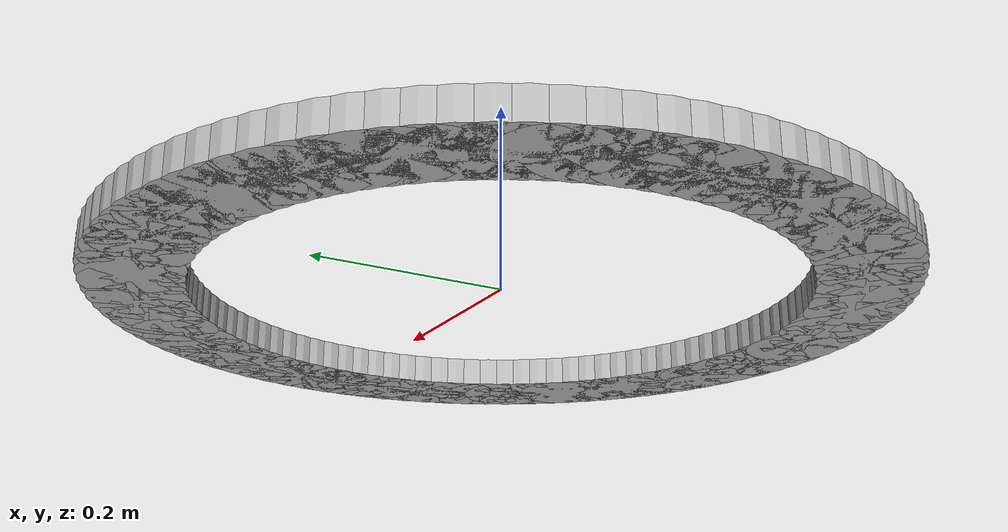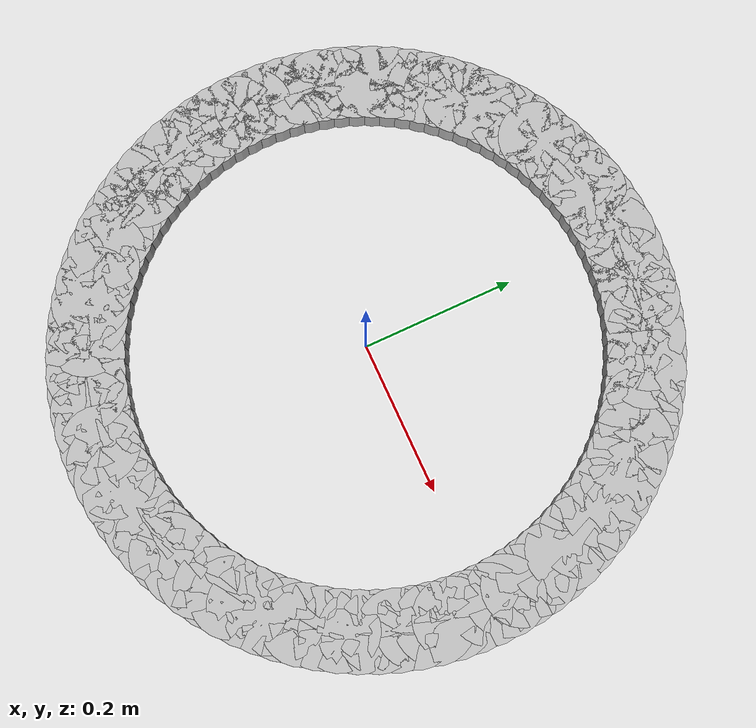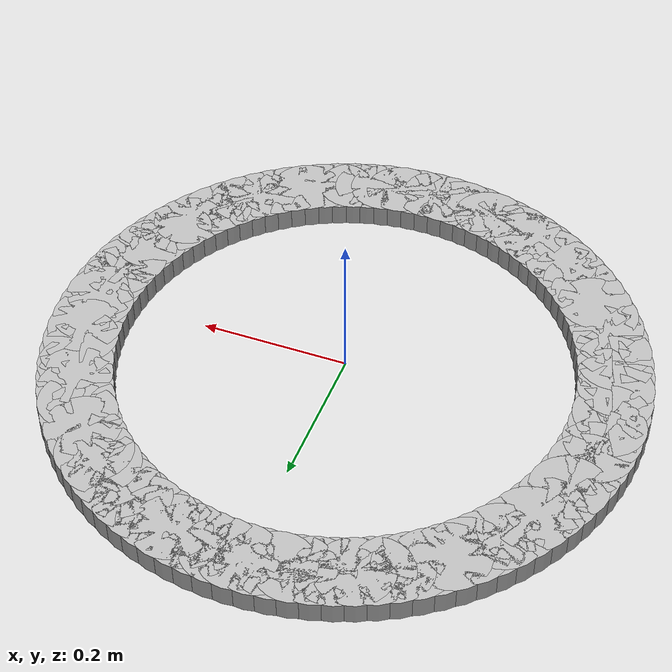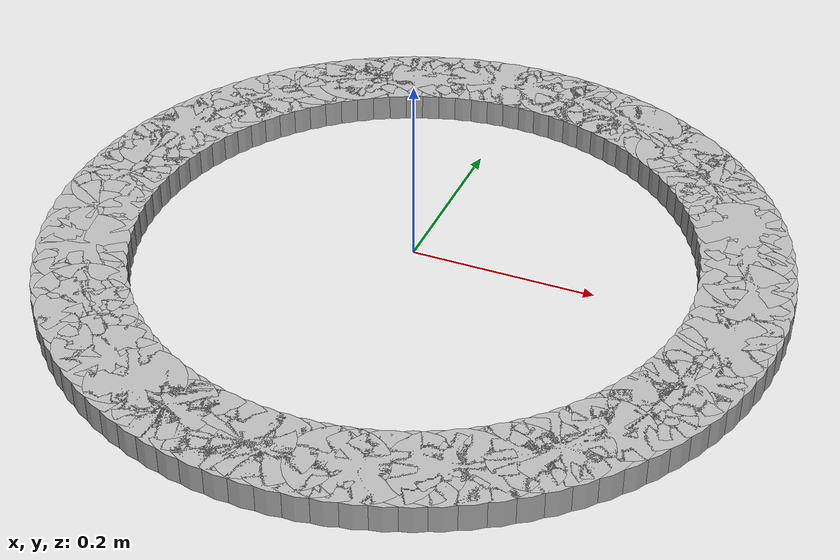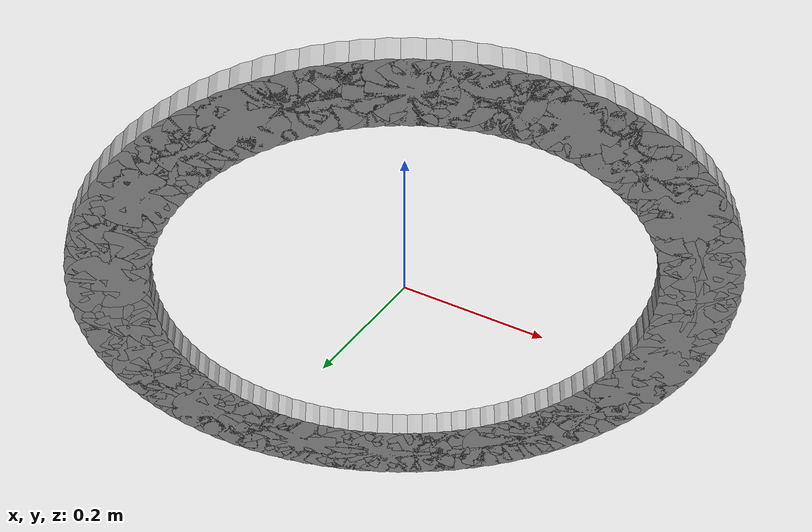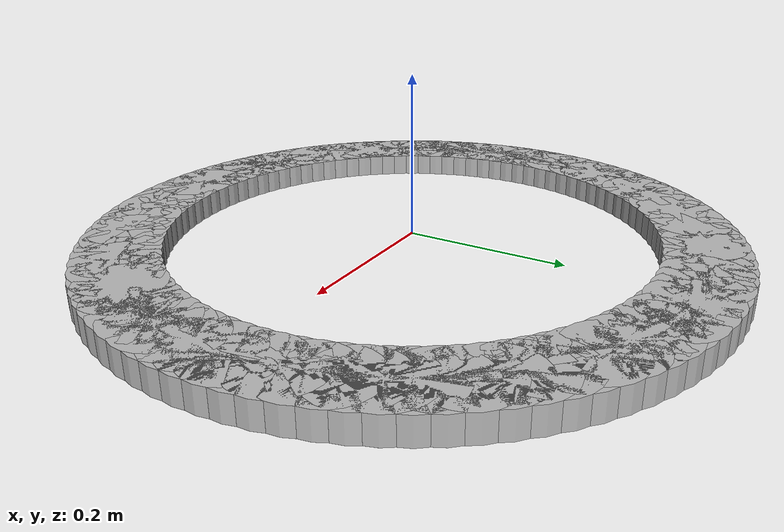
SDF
<?xml version='1.0'?>
<sdf version='1.6'>
    <model name='approximate_ring'>
        <static>false</static>

        <link name='segment_0'>
            <pose>0.35 0.0 0 0 0 0.0</pose>
            <collision name='collision'>
                <geometry>
                    <cylinder>
                        <radius>0.05000000000000002</radius>
                        <length>0.03</length>
                    </cylinder>
                </geometry>
            </collision>
            <visual name='visual'>
                <geometry>
                    <cylinder>
                        <radius>0.05000000000000002</radius>
                        <length>0.03</length>
                    </cylinder>
                </geometry>
            </visual>
        </link>

        <link name='segment_1'>
            <pose>0.3492506231335112 0.02289109523055007 0 0 0 0.06544984694978735</pose>
            <collision name='collision'>
                <geometry>
                    <cylinder>
                        <radius>0.05000000000000002</radius>
                        <length>0.03</length>
                    </cylinder>
                </geometry>
            </collision>
            <visual name='visual'>
                <geometry>
                    <cylinder>
                        <radius>0.05000000000000002</radius>
                        <length>0.03</length>
                    </cylinder>
                </geometry>
            </visual>
        </link>

        <link name='segment_2'>
            <pose>0.3470057014808336 0.045684167277018045 0 0 0 0.1308996938995747</pose>
            <collision name='collision'>
                <geometry>
                    <cylinder>
                        <radius>0.05000000000000002</radius>
                        <length>0.03</length>
                    </cylinder>
                </geometry>
            </collision>
            <visual name='visual'>
                <geometry>
                    <cylinder>
                        <radius>0.05000000000000002</radius>
                        <length>0.03</length>
                    </cylinder>
                </geometry>
            </visual>
        </link>

        <link name='segment_3'>
            <pose>0.34327484814113063 0.06828161270564488 0 0 0 0.19634954084936207</pose>
            <collision name='collision'>
                <geometry>
                    <cylinder>
                        <radius>0.05000000000000002</radius>
                        <length>0.03</length>
                    </cylinder>
                </geometry>
            </collision>
            <visual name='visual'>
                <geometry>
                    <cylinder>
                        <radius>0.05000000000000002</radius>
                        <length>0.03</length>
                    </cylinder>
                </geometry>
            </visual>
        </link>

        <link name='segment_4'>
            <pose>0.3380740392011739 0.09058666578588226 0 0 0 0.2617993877991494</pose>
            <collision name='collision'>
                <geometry>
                    <cylinder>
                        <radius>0.05000000000000002</radius>
                        <length>0.03</length>
                    </cylinder>
                </geometry>
            </collision>
            <visual name='visual'>
                <geometry>
                    <cylinder>
                        <radius>0.05000000000000002</radius>
                        <length>0.03</length>
                    </cylinder>
                </geometry>
            </visual>
        </link>

        <link name='segment_5'>
            <pose>0.331425545323287 0.11250381285610654 0 0 0 0.3272492347489368</pose>
            <collision name='collision'>
                <geometry>
                    <cylinder>
                        <radius>0.05000000000000002</radius>
                        <length>0.03</length>
                    </cylinder>
                </geometry>
            </collision>
            <visual name='visual'>
                <geometry>
                    <cylinder>
                        <radius>0.05000000000000002</radius>
                        <length>0.03</length>
                    </cylinder>
                </geometry>
            </visual>
        </link>

        <link name='segment_6'>
            <pose>0.3233578363789503 0.13393920132778142 0 0 0 0.39269908169872414</pose>
            <collision name='collision'>
                <geometry>
                    <cylinder>
                        <radius>0.05000000000000002</radius>
                        <length>0.03</length>
                    </cylinder>
                </geometry>
            </collision>
            <visual name='visual'>
                <geometry>
                    <cylinder>
                        <radius>0.05000000000000002</radius>
                        <length>0.03</length>
                    </cylinder>
                </geometry>
            </visual>
        </link>

        <link name='segment_7'>
            <pose>0.3139054595364409 0.15480104157665045 0 0 0 0.45814892864851153</pose>
            <collision name='collision'>
                <geometry>
                    <cylinder>
                        <radius>0.05000000000000002</radius>
                        <length>0.03</length>
                    </cylinder>
                </geometry>
            </collision>
            <visual name='visual'>
                <geometry>
                    <cylinder>
                        <radius>0.05000000000000002</radius>
                        <length>0.03</length>
                    </cylinder>
                </geometry>
            </visual>
        </link>

        <link name='segment_8'>
            <pose>0.30310889132455354 0.17499999999999996 0 0 0 0.5235987755982988</pose>
            <collision name='collision'>
                <geometry>
                    <cylinder>
                        <radius>0.05000000000000002</radius>
                        <length>0.03</length>
                    </cylinder>
                </geometry>
            </collision>
            <visual name='visual'>
                <geometry>
                    <cylinder>
                        <radius>0.05000000000000002</radius>
                        <length>0.03</length>
                    </cylinder>
                </geometry>
            </visual>
        </link>

        <link name='segment_9'>
            <pose>0.29101436430589084 0.19444958155686076 0 0 0 0.5890486225480862</pose>
            <collision name='collision'>
                <geometry>
                    <cylinder>
                        <radius>0.05000000000000002</radius>
                        <length>0.03</length>
                    </cylinder>
                </geometry>
            </collision>
            <visual name='visual'>
                <geometry>
                    <cylinder>
                        <radius>0.05000000000000002</radius>
                        <length>0.03</length>
                    </cylinder>
                </geometry>
            </visual>
        </link>

        <link name='segment_10'>
            <pose>0.2776736691019323 0.21306650015305223 0 0 0 0.6544984694978736</pose>
            <collision name='collision'>
                <geometry>
                    <cylinder>
                        <radius>0.05000000000000002</radius>
                        <length>0.03</length>
                    </cylinder>
                </geometry>
            </collision>
            <visual name='visual'>
                <geometry>
                    <cylinder>
                        <radius>0.05000000000000002</radius>
                        <length>0.03</length>
                    </cylinder>
                </geometry>
            </visual>
        </link>

        <link name='segment_11'>
            <pose>0.2631439326176421 0.23077103528502407 0 0 0 0.7199483164476609</pose>
            <collision name='collision'>
                <geometry>
                    <cylinder>
                        <radius>0.05000000000000002</radius>
                        <length>0.03</length>
                    </cylinder>
                </geometry>
            </collision>
            <visual name='visual'>
                <geometry>
                    <cylinder>
                        <radius>0.05000000000000002</radius>
                        <length>0.03</length>
                    </cylinder>
                </geometry>
            </visual>
        </link>

        <link name='segment_12'>
            <pose>0.24748737341529164 0.2474873734152916 0 0 0 0.7853981633974483</pose>
            <collision name='collision'>
                <geometry>
                    <cylinder>
                        <radius>0.05000000000000002</radius>
                        <length>0.03</length>
                    </cylinder>
                </geometry>
            </collision>
            <visual name='visual'>
                <geometry>
                    <cylinder>
                        <radius>0.05000000000000002</radius>
                        <length>0.03</length>
                    </cylinder>
                </geometry>
            </visual>
        </link>

        <link name='segment_13'>
            <pose>0.23077103528502407 0.2631439326176421 0 0 0 0.8508480103472357</pose>
            <collision name='collision'>
                <geometry>
                    <cylinder>
                        <radius>0.05000000000000002</radius>
                        <length>0.03</length>
                    </cylinder>
                </geometry>
            </collision>
            <visual name='visual'>
                <geometry>
                    <cylinder>
                        <radius>0.05000000000000002</radius>
                        <length>0.03</length>
                    </cylinder>
                </geometry>
            </visual>
        </link>

        <link name='segment_14'>
            <pose>0.21306650015305223 0.2776736691019323 0 0 0 0.9162978572970231</pose>
            <collision name='collision'>
                <geometry>
                    <cylinder>
                        <radius>0.05000000000000002</radius>
                        <length>0.03</length>
                    </cylinder>
                </geometry>
            </collision>
            <visual name='visual'>
                <geometry>
                    <cylinder>
                        <radius>0.05000000000000002</radius>
                        <length>0.03</length>
                    </cylinder>
                </geometry>
            </visual>
        </link>

        <link name='segment_15'>
            <pose>0.1944495815568608 0.29101436430589084 0 0 0 0.9817477042468103</pose>
            <collision name='collision'>
                <geometry>
                    <cylinder>
                        <radius>0.05000000000000002</radius>
                        <length>0.03</length>
                    </cylinder>
                </geometry>
            </collision>
            <visual name='visual'>
                <geometry>
                    <cylinder>
                        <radius>0.05000000000000002</radius>
                        <length>0.03</length>
                    </cylinder>
                </geometry>
            </visual>
        </link>

        <link name='segment_16'>
            <pose>0.17500000000000002 0.3031088913245535 0 0 0 1.0471975511965976</pose>
            <collision name='collision'>
                <geometry>
                    <cylinder>
                        <radius>0.05000000000000002</radius>
                        <length>0.03</length>
                    </cylinder>
                </geometry>
            </collision>
            <visual name='visual'>
                <geometry>
                    <cylinder>
                        <radius>0.05000000000000002</radius>
                        <length>0.03</length>
                    </cylinder>
                </geometry>
            </visual>
        </link>

        <link name='segment_17'>
            <pose>0.15480104157665042 0.3139054595364409 0 0 0 1.1126473981463851</pose>
            <collision name='collision'>
                <geometry>
                    <cylinder>
                        <radius>0.05000000000000002</radius>
                        <length>0.03</length>
                    </cylinder>
                </geometry>
            </collision>
            <visual name='visual'>
                <geometry>
                    <cylinder>
                        <radius>0.05000000000000002</radius>
                        <length>0.03</length>
                    </cylinder>
                </geometry>
            </visual>
        </link>

        <link name='segment_18'>
            <pose>0.13393920132778142 0.3233578363789503 0 0 0 1.1780972450961724</pose>
            <collision name='collision'>
                <geometry>
                    <cylinder>
                        <radius>0.05000000000000002</radius>
                        <length>0.03</length>
                    </cylinder>
                </geometry>
            </collision>
            <visual name='visual'>
                <geometry>
                    <cylinder>
                        <radius>0.05000000000000002</radius>
                        <length>0.03</length>
                    </cylinder>
                </geometry>
            </visual>
        </link>

        <link name='segment_19'>
            <pose>0.11250381285610658 0.33142554532328694 0 0 0 1.2435470920459597</pose>
            <collision name='collision'>
                <geometry>
                    <cylinder>
                        <radius>0.05000000000000002</radius>
                        <length>0.03</length>
                    </cylinder>
                </geometry>
            </collision>
            <visual name='visual'>
                <geometry>
                    <cylinder>
                        <radius>0.05000000000000002</radius>
                        <length>0.03</length>
                    </cylinder>
                </geometry>
            </visual>
        </link>

        <link name='segment_20'>
            <pose>0.09058666578588226 0.3380740392011739 0 0 0 1.3089969389957472</pose>
            <collision name='collision'>
                <geometry>
                    <cylinder>
                        <radius>0.05000000000000002</radius>
                        <length>0.03</length>
                    </cylinder>
                </geometry>
            </collision>
            <visual name='visual'>
                <geometry>
                    <cylinder>
                        <radius>0.05000000000000002</radius>
                        <length>0.03</length>
                    </cylinder>
                </geometry>
            </visual>
        </link>

        <link name='segment_21'>
            <pose>0.06828161270564491 0.34327484814113063 0 0 0 1.3744467859455345</pose>
            <collision name='collision'>
                <geometry>
                    <cylinder>
                        <radius>0.05000000000000002</radius>
                        <length>0.03</length>
                    </cylinder>
                </geometry>
            </collision>
            <visual name='visual'>
                <geometry>
                    <cylinder>
                        <radius>0.05000000000000002</radius>
                        <length>0.03</length>
                    </cylinder>
                </geometry>
            </visual>
        </link>

        <link name='segment_22'>
            <pose>0.045684167277018094 0.3470057014808336 0 0 0 1.4398966328953218</pose>
            <collision name='collision'>
                <geometry>
                    <cylinder>
                        <radius>0.05000000000000002</radius>
                        <length>0.03</length>
                    </cylinder>
                </geometry>
            </collision>
            <visual name='visual'>
                <geometry>
                    <cylinder>
                        <radius>0.05000000000000002</radius>
                        <length>0.03</length>
                    </cylinder>
                </geometry>
            </visual>
        </link>

        <link name='segment_23'>
            <pose>0.022891095230550065 0.3492506231335112 0 0 0 1.5053464798451093</pose>
            <collision name='collision'>
                <geometry>
                    <cylinder>
                        <radius>0.05000000000000002</radius>
                        <length>0.03</length>
                    </cylinder>
                </geometry>
            </collision>
            <visual name='visual'>
                <geometry>
                    <cylinder>
                        <radius>0.05000000000000002</radius>
                        <length>0.03</length>
                    </cylinder>
                </geometry>
            </visual>
        </link>

        <link name='segment_24'>
            <pose>2.143131898507868e-17 0.35 0 0 0 1.5707963267948966</pose>
            <collision name='collision'>
                <geometry>
                    <cylinder>
                        <radius>0.05000000000000002</radius>
                        <length>0.03</length>
                    </cylinder>
                </geometry>
            </collision>
            <visual name='visual'>
                <geometry>
                    <cylinder>
                        <radius>0.05000000000000002</radius>
                        <length>0.03</length>
                    </cylinder>
                </geometry>
            </visual>
        </link>

        <link name='segment_25'>
            <pose>-0.02289109523055002 0.3492506231335112 0 0 0 1.6362461737446838</pose>
            <collision name='collision'>
                <geometry>
                    <cylinder>
                        <radius>0.05000000000000002</radius>
                        <length>0.03</length>
                    </cylinder>
                </geometry>
            </collision>
            <visual name='visual'>
                <geometry>
                    <cylinder>
                        <radius>0.05000000000000002</radius>
                        <length>0.03</length>
                    </cylinder>
                </geometry>
            </visual>
        </link>

        <link name='segment_26'>
            <pose>-0.04568416727701806 0.3470057014808336 0 0 0 1.7016960206944713</pose>
            <collision name='collision'>
                <geometry>
                    <cylinder>
                        <radius>0.05000000000000002</radius>
                        <length>0.03</length>
                    </cylinder>
                </geometry>
            </collision>
            <visual name='visual'>
                <geometry>
                    <cylinder>
                        <radius>0.05000000000000002</radius>
                        <length>0.03</length>
                    </cylinder>
                </geometry>
            </visual>
        </link>

        <link name='segment_27'>
            <pose>-0.06828161270564487 0.34327484814113063 0 0 0 1.7671458676442586</pose>
            <collision name='collision'>
                <geometry>
                    <cylinder>
                        <radius>0.05000000000000002</radius>
                        <length>0.03</length>
                    </cylinder>
                </geometry>
            </collision>
            <visual name='visual'>
                <geometry>
                    <cylinder>
                        <radius>0.05000000000000002</radius>
                        <length>0.03</length>
                    </cylinder>
                </geometry>
            </visual>
        </link>

        <link name='segment_28'>
            <pose>-0.09058666578588229 0.3380740392011739 0 0 0 1.8325957145940461</pose>
            <collision name='collision'>
                <geometry>
                    <cylinder>
                        <radius>0.05000000000000002</radius>
                        <length>0.03</length>
                    </cylinder>
                </geometry>
            </collision>
            <visual name='visual'>
                <geometry>
                    <cylinder>
                        <radius>0.05000000000000002</radius>
                        <length>0.03</length>
                    </cylinder>
                </geometry>
            </visual>
        </link>

        <link name='segment_29'>
            <pose>-0.11250381285610654 0.331425545323287 0 0 0 1.8980455615438334</pose>
            <collision name='collision'>
                <geometry>
                    <cylinder>
                        <radius>0.05000000000000002</radius>
                        <length>0.03</length>
                    </cylinder>
                </geometry>
            </collision>
            <visual name='visual'>
                <geometry>
                    <cylinder>
                        <radius>0.05000000000000002</radius>
                        <length>0.03</length>
                    </cylinder>
                </geometry>
            </visual>
        </link>

        <link name='segment_30'>
            <pose>-0.1339392013277814 0.3233578363789503 0 0 0 1.9634954084936207</pose>
            <collision name='collision'>
                <geometry>
                    <cylinder>
                        <radius>0.05000000000000002</radius>
                        <length>0.03</length>
                    </cylinder>
                </geometry>
            </collision>
            <visual name='visual'>
                <geometry>
                    <cylinder>
                        <radius>0.05000000000000002</radius>
                        <length>0.03</length>
                    </cylinder>
                </geometry>
            </visual>
        </link>

        <link name='segment_31'>
            <pose>-0.1548010415766504 0.3139054595364409 0 0 0 2.028945255443408</pose>
            <collision name='collision'>
                <geometry>
                    <cylinder>
                        <radius>0.05000000000000002</radius>
                        <length>0.03</length>
                    </cylinder>
                </geometry>
            </collision>
            <visual name='visual'>
                <geometry>
                    <cylinder>
                        <radius>0.05000000000000002</radius>
                        <length>0.03</length>
                    </cylinder>
                </geometry>
            </visual>
        </link>

        <link name='segment_32'>
            <pose>-0.1749999999999999 0.30310889132455354 0 0 0 2.0943951023931953</pose>
            <collision name='collision'>
                <geometry>
                    <cylinder>
                        <radius>0.05000000000000002</radius>
                        <length>0.03</length>
                    </cylinder>
                </geometry>
            </collision>
            <visual name='visual'>
                <geometry>
                    <cylinder>
                        <radius>0.05000000000000002</radius>
                        <length>0.03</length>
                    </cylinder>
                </geometry>
            </visual>
        </link>

        <link name='segment_33'>
            <pose>-0.1944495815568608 0.2910143643058908 0 0 0 2.159844949342983</pose>
            <collision name='collision'>
                <geometry>
                    <cylinder>
                        <radius>0.05000000000000002</radius>
                        <length>0.03</length>
                    </cylinder>
                </geometry>
            </collision>
            <visual name='visual'>
                <geometry>
                    <cylinder>
                        <radius>0.05000000000000002</radius>
                        <length>0.03</length>
                    </cylinder>
                </geometry>
            </visual>
        </link>

        <link name='segment_34'>
            <pose>-0.21306650015305223 0.2776736691019323 0 0 0 2.2252947962927703</pose>
            <collision name='collision'>
                <geometry>
                    <cylinder>
                        <radius>0.05000000000000002</radius>
                        <length>0.03</length>
                    </cylinder>
                </geometry>
            </collision>
            <visual name='visual'>
                <geometry>
                    <cylinder>
                        <radius>0.05000000000000002</radius>
                        <length>0.03</length>
                    </cylinder>
                </geometry>
            </visual>
        </link>

        <link name='segment_35'>
            <pose>-0.23077103528502407 0.2631439326176421 0 0 0 2.2907446432425576</pose>
            <collision name='collision'>
                <geometry>
                    <cylinder>
                        <radius>0.05000000000000002</radius>
                        <length>0.03</length>
                    </cylinder>
                </geometry>
            </collision>
            <visual name='visual'>
                <geometry>
                    <cylinder>
                        <radius>0.05000000000000002</radius>
                        <length>0.03</length>
                    </cylinder>
                </geometry>
            </visual>
        </link>

        <link name='segment_36'>
            <pose>-0.2474873734152916 0.24748737341529164 0 0 0 2.356194490192345</pose>
            <collision name='collision'>
                <geometry>
                    <cylinder>
                        <radius>0.05000000000000002</radius>
                        <length>0.03</length>
                    </cylinder>
                </geometry>
            </collision>
            <visual name='visual'>
                <geometry>
                    <cylinder>
                        <radius>0.05000000000000002</radius>
                        <length>0.03</length>
                    </cylinder>
                </geometry>
            </visual>
        </link>

        <link name='segment_37'>
            <pose>-0.263143932617642 0.23077103528502413 0 0 0 2.421644337142132</pose>
            <collision name='collision'>
                <geometry>
                    <cylinder>
                        <radius>0.05000000000000002</radius>
                        <length>0.03</length>
                    </cylinder>
                </geometry>
            </collision>
            <visual name='visual'>
                <geometry>
                    <cylinder>
                        <radius>0.05000000000000002</radius>
                        <length>0.03</length>
                    </cylinder>
                </geometry>
            </visual>
        </link>

        <link name='segment_38'>
            <pose>-0.27767366910193225 0.21306650015305229 0 0 0 2.4870941840919194</pose>
            <collision name='collision'>
                <geometry>
                    <cylinder>
                        <radius>0.05000000000000002</radius>
                        <length>0.03</length>
                    </cylinder>
                </geometry>
            </collision>
            <visual name='visual'>
                <geometry>
                    <cylinder>
                        <radius>0.05000000000000002</radius>
                        <length>0.03</length>
                    </cylinder>
                </geometry>
            </visual>
        </link>

        <link name='segment_39'>
            <pose>-0.29101436430589084 0.19444958155686076 0 0 0 2.552544031041707</pose>
            <collision name='collision'>
                <geometry>
                    <cylinder>
                        <radius>0.05000000000000002</radius>
                        <length>0.03</length>
                    </cylinder>
                </geometry>
            </collision>
            <visual name='visual'>
                <geometry>
                    <cylinder>
                        <radius>0.05000000000000002</radius>
                        <length>0.03</length>
                    </cylinder>
                </geometry>
            </visual>
        </link>

        <link name='segment_40'>
            <pose>-0.30310889132455354 0.17499999999999996 0 0 0 2.6179938779914944</pose>
            <collision name='collision'>
                <geometry>
                    <cylinder>
                        <radius>0.05000000000000002</radius>
                        <length>0.03</length>
                    </cylinder>
                </geometry>
            </collision>
            <visual name='visual'>
                <geometry>
                    <cylinder>
                        <radius>0.05000000000000002</radius>
                        <length>0.03</length>
                    </cylinder>
                </geometry>
            </visual>
        </link>

        <link name='segment_41'>
            <pose>-0.3139054595364409 0.15480104157665045 0 0 0 2.6834437249412817</pose>
            <collision name='collision'>
                <geometry>
                    <cylinder>
                        <radius>0.05000000000000002</radius>
                        <length>0.03</length>
                    </cylinder>
                </geometry>
            </collision>
            <visual name='visual'>
                <geometry>
                    <cylinder>
                        <radius>0.05000000000000002</radius>
                        <length>0.03</length>
                    </cylinder>
                </geometry>
            </visual>
        </link>

        <link name='segment_42'>
            <pose>-0.3233578363789503 0.13393920132778145 0 0 0 2.748893571891069</pose>
            <collision name='collision'>
                <geometry>
                    <cylinder>
                        <radius>0.05000000000000002</radius>
                        <length>0.03</length>
                    </cylinder>
                </geometry>
            </collision>
            <visual name='visual'>
                <geometry>
                    <cylinder>
                        <radius>0.05000000000000002</radius>
                        <length>0.03</length>
                    </cylinder>
                </geometry>
            </visual>
        </link>

        <link name='segment_43'>
            <pose>-0.33142554532328694 0.11250381285610661 0 0 0 2.8143434188408563</pose>
            <collision name='collision'>
                <geometry>
                    <cylinder>
                        <radius>0.05000000000000002</radius>
                        <length>0.03</length>
                    </cylinder>
                </geometry>
            </collision>
            <visual name='visual'>
                <geometry>
                    <cylinder>
                        <radius>0.05000000000000002</radius>
                        <length>0.03</length>
                    </cylinder>
                </geometry>
            </visual>
        </link>

        <link name='segment_44'>
            <pose>-0.33807403920117385 0.09058666578588236 0 0 0 2.8797932657906435</pose>
            <collision name='collision'>
                <geometry>
                    <cylinder>
                        <radius>0.05000000000000002</radius>
                        <length>0.03</length>
                    </cylinder>
                </geometry>
            </collision>
            <visual name='visual'>
                <geometry>
                    <cylinder>
                        <radius>0.05000000000000002</radius>
                        <length>0.03</length>
                    </cylinder>
                </geometry>
            </visual>
        </link>

        <link name='segment_45'>
            <pose>-0.34327484814113063 0.06828161270564485 0 0 0 2.9452431127404313</pose>
            <collision name='collision'>
                <geometry>
                    <cylinder>
                        <radius>0.05000000000000002</radius>
                        <length>0.03</length>
                    </cylinder>
                </geometry>
            </collision>
            <visual name='visual'>
                <geometry>
                    <cylinder>
                        <radius>0.05000000000000002</radius>
                        <length>0.03</length>
                    </cylinder>
                </geometry>
            </visual>
        </link>

        <link name='segment_46'>
            <pose>-0.3470057014808336 0.045684167277018045 0 0 0 3.0106929596902186</pose>
            <collision name='collision'>
                <geometry>
                    <cylinder>
                        <radius>0.05000000000000002</radius>
                        <length>0.03</length>
                    </cylinder>
                </geometry>
            </collision>
            <visual name='visual'>
                <geometry>
                    <cylinder>
                        <radius>0.05000000000000002</radius>
                        <length>0.03</length>
                    </cylinder>
                </geometry>
            </visual>
        </link>

        <link name='segment_47'>
            <pose>-0.3492506231335112 0.02289109523055009 0 0 0 3.076142806640006</pose>
            <collision name='collision'>
                <geometry>
                    <cylinder>
                        <radius>0.05000000000000002</radius>
                        <length>0.03</length>
                    </cylinder>
                </geometry>
            </collision>
            <visual name='visual'>
                <geometry>
                    <cylinder>
                        <radius>0.05000000000000002</radius>
                        <length>0.03</length>
                    </cylinder>
                </geometry>
            </visual>
        </link>

        <link name='segment_48'>
            <pose>-0.35 4.286263797015736e-17 0 0 0 3.141592653589793</pose>
            <collision name='collision'>
                <geometry>
                    <cylinder>
                        <radius>0.05000000000000002</radius>
                        <length>0.03</length>
                    </cylinder>
                </geometry>
            </collision>
            <visual name='visual'>
                <geometry>
                    <cylinder>
                        <radius>0.05000000000000002</radius>
                        <length>0.03</length>
                    </cylinder>
                </geometry>
            </visual>
        </link>

        <link name='segment_49'>
            <pose>-0.3492506231335112 -0.022891095230550003 0 0 0 3.2070425005395804</pose>
            <collision name='collision'>
                <geometry>
                    <cylinder>
                        <radius>0.05000000000000002</radius>
                        <length>0.03</length>
                    </cylinder>
                </geometry>
            </collision>
            <visual name='visual'>
                <geometry>
                    <cylinder>
                        <radius>0.05000000000000002</radius>
                        <length>0.03</length>
                    </cylinder>
                </geometry>
            </visual>
        </link>

        <link name='segment_50'>
            <pose>-0.34700570148083365 -0.04568416727701796 0 0 0 3.2724923474893677</pose>
            <collision name='collision'>
                <geometry>
                    <cylinder>
                        <radius>0.05000000000000002</radius>
                        <length>0.03</length>
                    </cylinder>
                </geometry>
            </collision>
            <visual name='visual'>
                <geometry>
                    <cylinder>
                        <radius>0.05000000000000002</radius>
                        <length>0.03</length>
                    </cylinder>
                </geometry>
            </visual>
        </link>

        <link name='segment_51'>
            <pose>-0.34327484814113063 -0.06828161270564492 0 0 0 3.3379421944391554</pose>
            <collision name='collision'>
                <geometry>
                    <cylinder>
                        <radius>0.05000000000000002</radius>
                        <length>0.03</length>
                    </cylinder>
                </geometry>
            </collision>
            <visual name='visual'>
                <geometry>
                    <cylinder>
                        <radius>0.05000000000000002</radius>
                        <length>0.03</length>
                    </cylinder>
                </geometry>
            </visual>
        </link>

        <link name='segment_52'>
            <pose>-0.3380740392011739 -0.09058666578588227 0 0 0 3.4033920413889427</pose>
            <collision name='collision'>
                <geometry>
                    <cylinder>
                        <radius>0.05000000000000002</radius>
                        <length>0.03</length>
                    </cylinder>
                </geometry>
            </collision>
            <visual name='visual'>
                <geometry>
                    <cylinder>
                        <radius>0.05000000000000002</radius>
                        <length>0.03</length>
                    </cylinder>
                </geometry>
            </visual>
        </link>

        <link name='segment_53'>
            <pose>-0.331425545323287 -0.11250381285610653 0 0 0 3.46884188833873</pose>
            <collision name='collision'>
                <geometry>
                    <cylinder>
                        <radius>0.05000000000000002</radius>
                        <length>0.03</length>
                    </cylinder>
                </geometry>
            </collision>
            <visual name='visual'>
                <geometry>
                    <cylinder>
                        <radius>0.05000000000000002</radius>
                        <length>0.03</length>
                    </cylinder>
                </geometry>
            </visual>
        </link>

        <link name='segment_54'>
            <pose>-0.3233578363789504 -0.13393920132778137 0 0 0 3.5342917352885173</pose>
            <collision name='collision'>
                <geometry>
                    <cylinder>
                        <radius>0.05000000000000002</radius>
                        <length>0.03</length>
                    </cylinder>
                </geometry>
            </collision>
            <visual name='visual'>
                <geometry>
                    <cylinder>
                        <radius>0.05000000000000002</radius>
                        <length>0.03</length>
                    </cylinder>
                </geometry>
            </visual>
        </link>

        <link name='segment_55'>
            <pose>-0.3139054595364409 -0.15480104157665037 0 0 0 3.5997415822383045</pose>
            <collision name='collision'>
                <geometry>
                    <cylinder>
                        <radius>0.05000000000000002</radius>
                        <length>0.03</length>
                    </cylinder>
                </geometry>
            </collision>
            <visual name='visual'>
                <geometry>
                    <cylinder>
                        <radius>0.05000000000000002</radius>
                        <length>0.03</length>
                    </cylinder>
                </geometry>
            </visual>
        </link>

        <link name='segment_56'>
            <pose>-0.3031088913245535 -0.17500000000000002 0 0 0 3.6651914291880923</pose>
            <collision name='collision'>
                <geometry>
                    <cylinder>
                        <radius>0.05000000000000002</radius>
                        <length>0.03</length>
                    </cylinder>
                </geometry>
            </collision>
            <visual name='visual'>
                <geometry>
                    <cylinder>
                        <radius>0.05000000000000002</radius>
                        <length>0.03</length>
                    </cylinder>
                </geometry>
            </visual>
        </link>

        <link name='segment_57'>
            <pose>-0.29101436430589084 -0.1944495815568608 0 0 0 3.7306412761378795</pose>
            <collision name='collision'>
                <geometry>
                    <cylinder>
                        <radius>0.05000000000000002</radius>
                        <length>0.03</length>
                    </cylinder>
                </geometry>
            </collision>
            <visual name='visual'>
                <geometry>
                    <cylinder>
                        <radius>0.05000000000000002</radius>
                        <length>0.03</length>
                    </cylinder>
                </geometry>
            </visual>
        </link>

        <link name='segment_58'>
            <pose>-0.2776736691019323 -0.21306650015305223 0 0 0 3.796091123087667</pose>
            <collision name='collision'>
                <geometry>
                    <cylinder>
                        <radius>0.05000000000000002</radius>
                        <length>0.03</length>
                    </cylinder>
                </geometry>
            </collision>
            <visual name='visual'>
                <geometry>
                    <cylinder>
                        <radius>0.05000000000000002</radius>
                        <length>0.03</length>
                    </cylinder>
                </geometry>
            </visual>
        </link>

        <link name='segment_59'>
            <pose>-0.26314393261764213 -0.23077103528502407 0 0 0 3.861540970037454</pose>
            <collision name='collision'>
                <geometry>
                    <cylinder>
                        <radius>0.05000000000000002</radius>
                        <length>0.03</length>
                    </cylinder>
                </geometry>
            </collision>
            <visual name='visual'>
                <geometry>
                    <cylinder>
                        <radius>0.05000000000000002</radius>
                        <length>0.03</length>
                    </cylinder>
                </geometry>
            </visual>
        </link>

        <link name='segment_60'>
            <pose>-0.24748737341529167 -0.2474873734152916 0 0 0 3.9269908169872414</pose>
            <collision name='collision'>
                <geometry>
                    <cylinder>
                        <radius>0.05000000000000002</radius>
                        <length>0.03</length>
                    </cylinder>
                </geometry>
            </collision>
            <visual name='visual'>
                <geometry>
                    <cylinder>
                        <radius>0.05000000000000002</radius>
                        <length>0.03</length>
                    </cylinder>
                </geometry>
            </visual>
        </link>

        <link name='segment_61'>
            <pose>-0.23077103528502416 -0.263143932617642 0 0 0 3.9924406639370287</pose>
            <collision name='collision'>
                <geometry>
                    <cylinder>
                        <radius>0.05000000000000002</radius>
                        <length>0.03</length>
                    </cylinder>
                </geometry>
            </collision>
            <visual name='visual'>
                <geometry>
                    <cylinder>
                        <radius>0.05000000000000002</radius>
                        <length>0.03</length>
                    </cylinder>
                </geometry>
            </visual>
        </link>

        <link name='segment_62'>
            <pose>-0.21306650015305229 -0.2776736691019322 0 0 0 4.057890510886816</pose>
            <collision name='collision'>
                <geometry>
                    <cylinder>
                        <radius>0.05000000000000002</radius>
                        <length>0.03</length>
                    </cylinder>
                </geometry>
            </collision>
            <visual name='visual'>
                <geometry>
                    <cylinder>
                        <radius>0.05000000000000002</radius>
                        <length>0.03</length>
                    </cylinder>
                </geometry>
            </visual>
        </link>

        <link name='segment_63'>
            <pose>-0.19444958155686076 -0.29101436430589084 0 0 0 4.123340357836604</pose>
            <collision name='collision'>
                <geometry>
                    <cylinder>
                        <radius>0.05000000000000002</radius>
                        <length>0.03</length>
                    </cylinder>
                </geometry>
            </collision>
            <visual name='visual'>
                <geometry>
                    <cylinder>
                        <radius>0.05000000000000002</radius>
                        <length>0.03</length>
                    </cylinder>
                </geometry>
            </visual>
        </link>

        <link name='segment_64'>
            <pose>-0.17500000000000016 -0.30310889132455343 0 0 0 4.1887902047863905</pose>
            <collision name='collision'>
                <geometry>
                    <cylinder>
                        <radius>0.05000000000000002</radius>
                        <length>0.03</length>
                    </cylinder>
                </geometry>
            </collision>
            <visual name='visual'>
                <geometry>
                    <cylinder>
                        <radius>0.05000000000000002</radius>
                        <length>0.03</length>
                    </cylinder>
                </geometry>
            </visual>
        </link>

        <link name='segment_65'>
            <pose>-0.15480104157665048 -0.3139054595364409 0 0 0 4.254240051736178</pose>
            <collision name='collision'>
                <geometry>
                    <cylinder>
                        <radius>0.05000000000000002</radius>
                        <length>0.03</length>
                    </cylinder>
                </geometry>
            </collision>
            <visual name='visual'>
                <geometry>
                    <cylinder>
                        <radius>0.05000000000000002</radius>
                        <length>0.03</length>
                    </cylinder>
                </geometry>
            </visual>
        </link>

        <link name='segment_66'>
            <pose>-0.1339392013277813 -0.3233578363789504 0 0 0 4.319689898685966</pose>
            <collision name='collision'>
                <geometry>
                    <cylinder>
                        <radius>0.05000000000000002</radius>
                        <length>0.03</length>
                    </cylinder>
                </geometry>
            </collision>
            <visual name='visual'>
                <geometry>
                    <cylinder>
                        <radius>0.05000000000000002</radius>
                        <length>0.03</length>
                    </cylinder>
                </geometry>
            </visual>
        </link>

        <link name='segment_67'>
            <pose>-0.11250381285610662 -0.33142554532328694 0 0 0 4.385139745635753</pose>
            <collision name='collision'>
                <geometry>
                    <cylinder>
                        <radius>0.05000000000000002</radius>
                        <length>0.03</length>
                    </cylinder>
                </geometry>
            </collision>
            <visual name='visual'>
                <geometry>
                    <cylinder>
                        <radius>0.05000000000000002</radius>
                        <length>0.03</length>
                    </cylinder>
                </geometry>
            </visual>
        </link>

        <link name='segment_68'>
            <pose>-0.09058666578588222 -0.3380740392011739 0 0 0 4.4505895925855405</pose>
            <collision name='collision'>
                <geometry>
                    <cylinder>
                        <radius>0.05000000000000002</radius>
                        <length>0.03</length>
                    </cylinder>
                </geometry>
            </collision>
            <visual name='visual'>
                <geometry>
                    <cylinder>
                        <radius>0.05000000000000002</radius>
                        <length>0.03</length>
                    </cylinder>
                </geometry>
            </visual>
        </link>

        <link name='segment_69'>
            <pose>-0.06828161270564503 -0.3432748481411306 0 0 0 4.516039439535327</pose>
            <collision name='collision'>
                <geometry>
                    <cylinder>
                        <radius>0.05000000000000002</radius>
                        <length>0.03</length>
                    </cylinder>
                </geometry>
            </collision>
            <visual name='visual'>
                <geometry>
                    <cylinder>
                        <radius>0.05000000000000002</radius>
                        <length>0.03</length>
                    </cylinder>
                </geometry>
            </visual>
        </link>

        <link name='segment_70'>
            <pose>-0.045684167277018066 -0.3470057014808336 0 0 0 4.581489286485115</pose>
            <collision name='collision'>
                <geometry>
                    <cylinder>
                        <radius>0.05000000000000002</radius>
                        <length>0.03</length>
                    </cylinder>
                </geometry>
            </collision>
            <visual name='visual'>
                <geometry>
                    <cylinder>
                        <radius>0.05000000000000002</radius>
                        <length>0.03</length>
                    </cylinder>
                </geometry>
            </visual>
        </link>

        <link name='segment_71'>
            <pose>-0.022891095230549954 -0.3492506231335112 0 0 0 4.646939133434903</pose>
            <collision name='collision'>
                <geometry>
                    <cylinder>
                        <radius>0.05000000000000002</radius>
                        <length>0.03</length>
                    </cylinder>
                </geometry>
            </collision>
            <visual name='visual'>
                <geometry>
                    <cylinder>
                        <radius>0.05000000000000002</radius>
                        <length>0.03</length>
                    </cylinder>
                </geometry>
            </visual>
        </link>

        <link name='segment_72'>
            <pose>-6.429395695523604e-17 -0.35 0 0 0 4.71238898038469</pose>
            <collision name='collision'>
                <geometry>
                    <cylinder>
                        <radius>0.05000000000000002</radius>
                        <length>0.03</length>
                    </cylinder>
                </geometry>
            </collision>
            <visual name='visual'>
                <geometry>
                    <cylinder>
                        <radius>0.05000000000000002</radius>
                        <length>0.03</length>
                    </cylinder>
                </geometry>
            </visual>
        </link>

        <link name='segment_73'>
            <pose>0.022891095230550138 -0.3492506231335112 0 0 0 4.777838827334477</pose>
            <collision name='collision'>
                <geometry>
                    <cylinder>
                        <radius>0.05000000000000002</radius>
                        <length>0.03</length>
                    </cylinder>
                </geometry>
            </collision>
            <visual name='visual'>
                <geometry>
                    <cylinder>
                        <radius>0.05000000000000002</radius>
                        <length>0.03</length>
                    </cylinder>
                </geometry>
            </visual>
        </link>

        <link name='segment_74'>
            <pose>0.04568416727701794 -0.34700570148083365 0 0 0 4.843288674284264</pose>
            <collision name='collision'>
                <geometry>
                    <cylinder>
                        <radius>0.05000000000000002</radius>
                        <length>0.03</length>
                    </cylinder>
                </geometry>
            </collision>
            <visual name='visual'>
                <geometry>
                    <cylinder>
                        <radius>0.05000000000000002</radius>
                        <length>0.03</length>
                    </cylinder>
                </geometry>
            </visual>
        </link>

        <link name='segment_75'>
            <pose>0.0682816127056449 -0.34327484814113063 0 0 0 4.908738521234052</pose>
            <collision name='collision'>
                <geometry>
                    <cylinder>
                        <radius>0.05000000000000002</radius>
                        <length>0.03</length>
                    </cylinder>
                </geometry>
            </collision>
            <visual name='visual'>
                <geometry>
                    <cylinder>
                        <radius>0.05000000000000002</radius>
                        <length>0.03</length>
                    </cylinder>
                </geometry>
            </visual>
        </link>

        <link name='segment_76'>
            <pose>0.09058666578588209 -0.3380740392011739 0 0 0 4.974188368183839</pose>
            <collision name='collision'>
                <geometry>
                    <cylinder>
                        <radius>0.05000000000000002</radius>
                        <length>0.03</length>
                    </cylinder>
                </geometry>
            </collision>
            <visual name='visual'>
                <geometry>
                    <cylinder>
                        <radius>0.05000000000000002</radius>
                        <length>0.03</length>
                    </cylinder>
                </geometry>
            </visual>
        </link>

        <link name='segment_77'>
            <pose>0.11250381285610651 -0.331425545323287 0 0 0 5.0396382151336265</pose>
            <collision name='collision'>
                <geometry>
                    <cylinder>
                        <radius>0.05000000000000002</radius>
                        <length>0.03</length>
                    </cylinder>
                </geometry>
            </collision>
            <visual name='visual'>
                <geometry>
                    <cylinder>
                        <radius>0.05000000000000002</radius>
                        <length>0.03</length>
                    </cylinder>
                </geometry>
            </visual>
        </link>

        <link name='segment_78'>
            <pose>0.1339392013277815 -0.3233578363789503 0 0 0 5.105088062083414</pose>
            <collision name='collision'>
                <geometry>
                    <cylinder>
                        <radius>0.05000000000000002</radius>
                        <length>0.03</length>
                    </cylinder>
                </geometry>
            </collision>
            <visual name='visual'>
                <geometry>
                    <cylinder>
                        <radius>0.05000000000000002</radius>
                        <length>0.03</length>
                    </cylinder>
                </geometry>
            </visual>
        </link>

        <link name='segment_79'>
            <pose>0.15480104157665034 -0.31390545953644095 0 0 0 5.170537909033201</pose>
            <collision name='collision'>
                <geometry>
                    <cylinder>
                        <radius>0.05000000000000002</radius>
                        <length>0.03</length>
                    </cylinder>
                </geometry>
            </collision>
            <visual name='visual'>
                <geometry>
                    <cylinder>
                        <radius>0.05000000000000002</radius>
                        <length>0.03</length>
                    </cylinder>
                </geometry>
            </visual>
        </link>

        <link name='segment_80'>
            <pose>0.17500000000000002 -0.3031088913245535 0 0 0 5.235987755982989</pose>
            <collision name='collision'>
                <geometry>
                    <cylinder>
                        <radius>0.05000000000000002</radius>
                        <length>0.03</length>
                    </cylinder>
                </geometry>
            </collision>
            <visual name='visual'>
                <geometry>
                    <cylinder>
                        <radius>0.05000000000000002</radius>
                        <length>0.03</length>
                    </cylinder>
                </geometry>
            </visual>
        </link>

        <link name='segment_81'>
            <pose>0.19444958155686062 -0.2910143643058909 0 0 0 5.301437602932776</pose>
            <collision name='collision'>
                <geometry>
                    <cylinder>
                        <radius>0.05000000000000002</radius>
                        <length>0.03</length>
                    </cylinder>
                </geometry>
            </collision>
            <visual name='visual'>
                <geometry>
                    <cylinder>
                        <radius>0.05000000000000002</radius>
                        <length>0.03</length>
                    </cylinder>
                </geometry>
            </visual>
        </link>

        <link name='segment_82'>
            <pose>0.21306650015305217 -0.2776736691019323 0 0 0 5.366887449882563</pose>
            <collision name='collision'>
                <geometry>
                    <cylinder>
                        <radius>0.05000000000000002</radius>
                        <length>0.03</length>
                    </cylinder>
                </geometry>
            </collision>
            <visual name='visual'>
                <geometry>
                    <cylinder>
                        <radius>0.05000000000000002</radius>
                        <length>0.03</length>
                    </cylinder>
                </geometry>
            </visual>
        </link>

        <link name='segment_83'>
            <pose>0.23077103528502416 -0.26314393261764196 0 0 0 5.432337296832351</pose>
            <collision name='collision'>
                <geometry>
                    <cylinder>
                        <radius>0.05000000000000002</radius>
                        <length>0.03</length>
                    </cylinder>
                </geometry>
            </collision>
            <visual name='visual'>
                <geometry>
                    <cylinder>
                        <radius>0.05000000000000002</radius>
                        <length>0.03</length>
                    </cylinder>
                </geometry>
            </visual>
        </link>

        <link name='segment_84'>
            <pose>0.24748737341529156 -0.24748737341529167 0 0 0 5.497787143782138</pose>
            <collision name='collision'>
                <geometry>
                    <cylinder>
                        <radius>0.05000000000000002</radius>
                        <length>0.03</length>
                    </cylinder>
                </geometry>
            </collision>
            <visual name='visual'>
                <geometry>
                    <cylinder>
                        <radius>0.05000000000000002</radius>
                        <length>0.03</length>
                    </cylinder>
                </geometry>
            </visual>
        </link>

        <link name='segment_85'>
            <pose>0.26314393261764213 -0.23077103528502405 0 0 0 5.563236990731926</pose>
            <collision name='collision'>
                <geometry>
                    <cylinder>
                        <radius>0.05000000000000002</radius>
                        <length>0.03</length>
                    </cylinder>
                </geometry>
            </collision>
            <visual name='visual'>
                <geometry>
                    <cylinder>
                        <radius>0.05000000000000002</radius>
                        <length>0.03</length>
                    </cylinder>
                </geometry>
            </visual>
        </link>

        <link name='segment_86'>
            <pose>0.2776736691019322 -0.21306650015305229 0 0 0 5.6286868376817125</pose>
            <collision name='collision'>
                <geometry>
                    <cylinder>
                        <radius>0.05000000000000002</radius>
                        <length>0.03</length>
                    </cylinder>
                </geometry>
            </collision>
            <visual name='visual'>
                <geometry>
                    <cylinder>
                        <radius>0.05000000000000002</radius>
                        <length>0.03</length>
                    </cylinder>
                </geometry>
            </visual>
        </link>

        <link name='segment_87'>
            <pose>0.29101436430589084 -0.19444958155686076 0 0 0 5.6941366846315</pose>
            <collision name='collision'>
                <geometry>
                    <cylinder>
                        <radius>0.05000000000000002</radius>
                        <length>0.03</length>
                    </cylinder>
                </geometry>
            </collision>
            <visual name='visual'>
                <geometry>
                    <cylinder>
                        <radius>0.05000000000000002</radius>
                        <length>0.03</length>
                    </cylinder>
                </geometry>
            </visual>
        </link>

        <link name='segment_88'>
            <pose>0.30310889132455343 -0.17500000000000016 0 0 0 5.759586531581287</pose>
            <collision name='collision'>
                <geometry>
                    <cylinder>
                        <radius>0.05000000000000002</radius>
                        <length>0.03</length>
                    </cylinder>
                </geometry>
            </collision>
            <visual name='visual'>
                <geometry>
                    <cylinder>
                        <radius>0.05000000000000002</radius>
                        <length>0.03</length>
                    </cylinder>
                </geometry>
            </visual>
        </link>

        <link name='segment_89'>
            <pose>0.3139054595364409 -0.15480104157665048 0 0 0 5.825036378531075</pose>
            <collision name='collision'>
                <geometry>
                    <cylinder>
                        <radius>0.05000000000000002</radius>
                        <length>0.03</length>
                    </cylinder>
                </geometry>
            </collision>
            <visual name='visual'>
                <geometry>
                    <cylinder>
                        <radius>0.05000000000000002</radius>
                        <length>0.03</length>
                    </cylinder>
                </geometry>
            </visual>
        </link>

        <link name='segment_90'>
            <pose>0.3233578363789504 -0.13393920132778134 0 0 0 5.8904862254808625</pose>
            <collision name='collision'>
                <geometry>
                    <cylinder>
                        <radius>0.05000000000000002</radius>
                        <length>0.03</length>
                    </cylinder>
                </geometry>
            </collision>
            <visual name='visual'>
                <geometry>
                    <cylinder>
                        <radius>0.05000000000000002</radius>
                        <length>0.03</length>
                    </cylinder>
                </geometry>
            </visual>
        </link>

        <link name='segment_91'>
            <pose>0.33142554532328694 -0.11250381285610664 0 0 0 5.955936072430649</pose>
            <collision name='collision'>
                <geometry>
                    <cylinder>
                        <radius>0.05000000000000002</radius>
                        <length>0.03</length>
                    </cylinder>
                </geometry>
            </collision>
            <visual name='visual'>
                <geometry>
                    <cylinder>
                        <radius>0.05000000000000002</radius>
                        <length>0.03</length>
                    </cylinder>
                </geometry>
            </visual>
        </link>

        <link name='segment_92'>
            <pose>0.3380740392011739 -0.09058666578588223 0 0 0 6.021385919380437</pose>
            <collision name='collision'>
                <geometry>
                    <cylinder>
                        <radius>0.05000000000000002</radius>
                        <length>0.03</length>
                    </cylinder>
                </geometry>
            </collision>
            <visual name='visual'>
                <geometry>
                    <cylinder>
                        <radius>0.05000000000000002</radius>
                        <length>0.03</length>
                    </cylinder>
                </geometry>
            </visual>
        </link>

        <link name='segment_93'>
            <pose>0.3432748481411306 -0.06828161270564505 0 0 0 6.086835766330224</pose>
            <collision name='collision'>
                <geometry>
                    <cylinder>
                        <radius>0.05000000000000002</radius>
                        <length>0.03</length>
                    </cylinder>
                </geometry>
            </collision>
            <visual name='visual'>
                <geometry>
                    <cylinder>
                        <radius>0.05000000000000002</radius>
                        <length>0.03</length>
                    </cylinder>
                </geometry>
            </visual>
        </link>

        <link name='segment_94'>
            <pose>0.3470057014808336 -0.04568416727701809 0 0 0 6.152285613280012</pose>
            <collision name='collision'>
                <geometry>
                    <cylinder>
                        <radius>0.05000000000000002</radius>
                        <length>0.03</length>
                    </cylinder>
                </geometry>
            </collision>
            <visual name='visual'>
                <geometry>
                    <cylinder>
                        <radius>0.05000000000000002</radius>
                        <length>0.03</length>
                    </cylinder>
                </geometry>
            </visual>
        </link>

        <link name='segment_95'>
            <pose>0.3492506231335112 -0.02289109523054998 0 0 0 6.217735460229799</pose>
            <collision name='collision'>
                <geometry>
                    <cylinder>
                        <radius>0.05000000000000002</radius>
                        <length>0.03</length>
                    </cylinder>
                </geometry>
            </collision>
            <visual name='visual'>
                <geometry>
                    <cylinder>
                        <radius>0.05000000000000002</radius>
                        <length>0.03</length>
                    </cylinder>
                </geometry>
            </visual>
        </link>

    </model>
</sdf>
